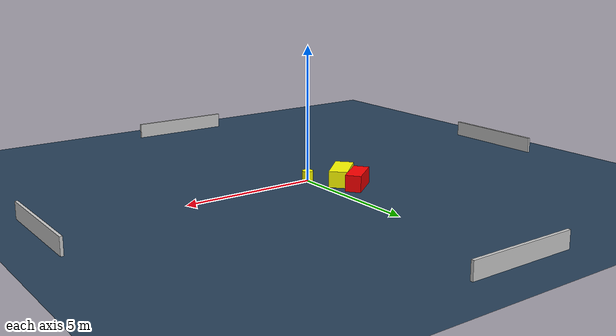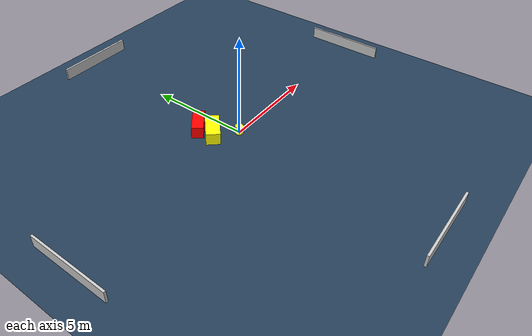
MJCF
<?xml version="1.0" ?>
<mujoco model="generated_environment">
  <option timestep="0.01" integrator="RK4" cone="elliptic"/>
  <default>
    <geom density="1"/>
  </default>
  <asset>
    <texture builtin="gradient" height="3072" name="skybox" rgb1="0.3 0.5 0.7" rgb2="0 0 0" type="skybox" width="512"/>
    <texture builtin="checker" height="300" name="groundplane" rgb1="0.2 0.3 0.4" rgb2="0.1 0.2 0.3" type="2d" width="300"/>
    <material name="groundplane" reflectance="0.2" texrepeat="5 5" texture="groundplane"/>
  </asset>
  <worldbody>
    <light dir="0 0 -1" directional="true" pos="0 0 1.5"/>
    <geom condim="3" friction="0.5 0.005 0.001" material="groundplane" name="floor" pos="0 0 0" size="0 0 0.05" type="plane"/>
    <body name="walls">
      <geom name="wall_1" condim="4" pos="-10.0 0.0 0.3" rgba="0.800000011920929 0.800000011920929 0.800000011920929 1.0" size="0.05 2.0 0.3" type="box"/>
      <geom name="wall_2" condim="4" pos="10.0 0.0 0.3" rgba="0.800000011920929 0.800000011920929 0.800000011920929 1.0" size="0.05 2.0 0.3" type="box"/>
      <geom name="wall_3" condim="4" pos="0.0 -10.0 0.3" rgba="0.800000011920929 0.800000011920929 0.800000011920929 1.0" size="2.0 0.05 0.3" type="box"/>
      <geom name="wall_4" condim="4" pos="0.0 10.0 0.3" rgba="0.800000011920929 0.800000011920929 0.800000011920929 1.0" size="2.0 0.05 0.3" type="box"/>
    </body>
    <body name="robot">
      <joint name="joint_x" type="slide" pos="0 0 0" axis="1 0 0"/>
      <joint name="joint_y" type="slide" pos="0 0 0" axis="0 1 0"/>
      <geom name="robot" type="cylinder" pos="0.0 0.0 0.2" size="0.2 0.2 0.0" mass="5.0" friction="1.0 0.005 0.0001" condim="4" rgba="1.0 1.0 0.0 1.0"/>
    </body>
    <body name="obstacle_1_movable">
      <geom name="obstacle_1_movable" condim="4" pos="-0.8841152197208337 0.8858806442082494 0.3" euler="0 0 132.09291693551265" friction="0.0 0.005 0.001" rgba="1.0 1.0 0.0 1.0" size="0.34091589291568286 0.7194707904771436 0.3" type="box" mass="0.1"/>
      <joint type="free"/>
    </body>
    <body name="obstacle_2_static">
      <geom name="obstacle_2_static" condim="4" pos="-0.9875262703785068 1.6754167269333402 0.3" euler="0 0 307.27758047489937" friction="0.0 0.005 0.001" rgba="1.0 0.0 0.0 1.0" size="0.28587374834884516 0.6613397517361249 0.3" type="box"/>
    </body>
  </worldbody>
  <actuator>
    <motor name="actuator_x" joint="joint_x" gear="1" ctrlrange="-1 1"/>
    <motor name="actuator_y" joint="joint_y" gear="1" ctrlrange="-1 1"/>
  </actuator>
</mujoco>
